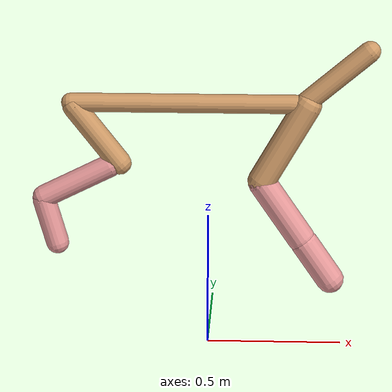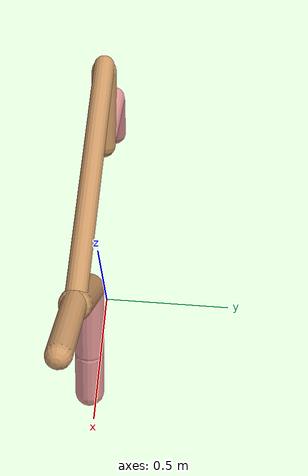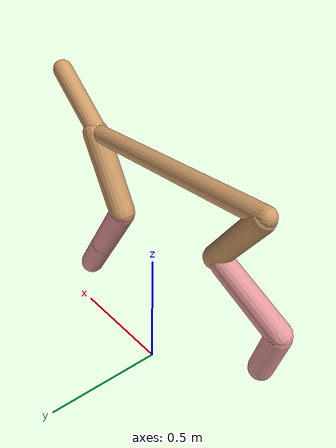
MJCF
<mujoco model="cheetah">
  <compiler angle="radian" coordinate="local" inertiafromgeom="true" settotalmass="14" />
  <default>
    <joint armature=".1" damping=".01" limited="true" solimplimit="0 .8 .03" solreflimit=".02 1" stiffness="8" />
    <geom conaffinity="0" condim="3" contype="1" friction="0.8 .1 .1" rgba="0.8 0.6 .4 1" solimp="0.0 0.8 0.01" solref="0.02 1" />
    <motor ctrllimited="true" ctrlrange="-1 1" />
  </default>
  <size nstack="300000" nuser_geom="1" />
  <option gravity="0 0 -9.81" timestep="0.01" />
  <worldbody>
    <body name="torso" pos="0.0 0.0 0.9257500314361303">
      <joint armature="0" axis="1 0 0" damping="0" limited="false" name="ignorex" pos="0 0 0" stiffness="0" type="slide" />
      <joint armature="0" axis="0 0 1" damping="0" limited="false" name="ignorez" pos="0 0 0" stiffness="0" type="slide" />
      <joint armature="0" axis="0 1 0" damping="0" limited="false" name="ignorey" pos="0 0 0" stiffness="0" type="hinge" />
      <geom fromto="-0.5 0.0 0.0 0.3641817948494078 0.0 0.0" name="torso" size="0.03485432074314248" type="capsule" />
      <geom axisangle="0 1 0 .87" name="head" pos="0.4641817948494078 0.0 0.1" size="0.039094496072223824 0.15" type="capsule" />

      <body name="bthigh" pos="-.5 0 0">
        <joint axis="0 1 0" damping="6" name="bthigh" pos="0 0 0" range="-.52 1.05" stiffness="240" type="hinge" />
        <geom axisangle="0 1 0 -3.8" name="bthigh" pos="0.09368727301548066 0.0 -0.12179345492012486" size="0.04263746436238402 0.13464635792925495" type="capsule" />
        <body name="bshin" pos="0.1473745460309613 0.0 -0.2335869098402497">
          <joint axis="0 1 0" damping="4.5" name="bshin" pos="0 0 0" range="-.785 .785" stiffness="180" type="hinge" />
          <geom axisangle="0 1 0 -2.03" name="bshin" pos="-0.1304200906959086 0.0 -0.0652100453479543" rgba="0.9 0.6 0.6 1" size="0.04263746436238402 0.13928933578888444" type="capsule" />
          <body name="bfoot" pos="-0.2608401813918172 0.0 -0.1304200906959086">
            <joint axis="0 1 0" damping="3" name="bfoot" pos="0 0 0" range="-.4 .785" stiffness="120" type="hinge" />
            <geom axisangle="0 1 0 -.27" name="bfoot" pos="0.02801680242162437 0.0 -0.09058766116325213" rgba="0.9 0.6 0.6 1" size="0.04263746436238402 0.08728798376103425" type="capsule" />
            <inertial mass="10" />
          </body>
        </body>
      </body>
      <body name="fthigh" pos="0.3641817948494078 0.0 0.0">
        <joint axis="0 1 0" damping="4.5" name="fthigh" pos="0 0 0" range="-1.5 0.8" stiffness="180" type="hinge" />
        <geom axisangle="0 1 0 .52" name="fthigh" pos="-0.08582489924716712 0.0 -0.14712839870942931" size="0.05203570092192053 0.1644066466328508" type="capsule" />
        <body name="fshin" pos="-0.17164979849433423 0.0 -0.29425679741885863">
          <joint axis="0 1 0" damping="3" name="fshin" pos="0 0 0" range="-1.2 1.1" stiffness="120" type="hinge" />
          <geom axisangle="0 1 0 -.6" name="fshin" pos="0.07965533280251848 0.0 -0.11029199926502557" rgba="0.9 0.6 0.6 1" size="0.05203570092192053 0.13103086122618182" type="capsule" />
          <body name="ffoot" pos="0.15931066560503696 0.0 -0.22058399853005115">
            <joint axis="0 1 0" damping="1.5" name="ffoot" pos="0 0 0" range="-3.1 -0.3" stiffness="60" type="hinge" />
            <geom axisangle="0 1 0 -.6" name="ffoot" pos="0.05393862241284978 0.0 -0.0839045237533219" rgba="0.9 0.6 0.6 1" size="0.05203570092192053 0.08652981401728989" type="capsule" />
            <inertial mass="10" />
          </body>
        </body>
      </body>
    </body>
  </worldbody>
  <actuator>
    <motor gear="120" joint="bthigh" name="bthigh" />
    <motor gear="90" joint="bshin" name="bshin" />
    <motor gear="60" joint="bfoot" name="bfoot" />
    <motor gear="120" joint="fthigh" name="fthigh" />
    <motor gear="60" joint="fshin" name="fshin" />
    <motor gear="30" joint="ffoot" name="ffoot" />
  </actuator>
</mujoco>
